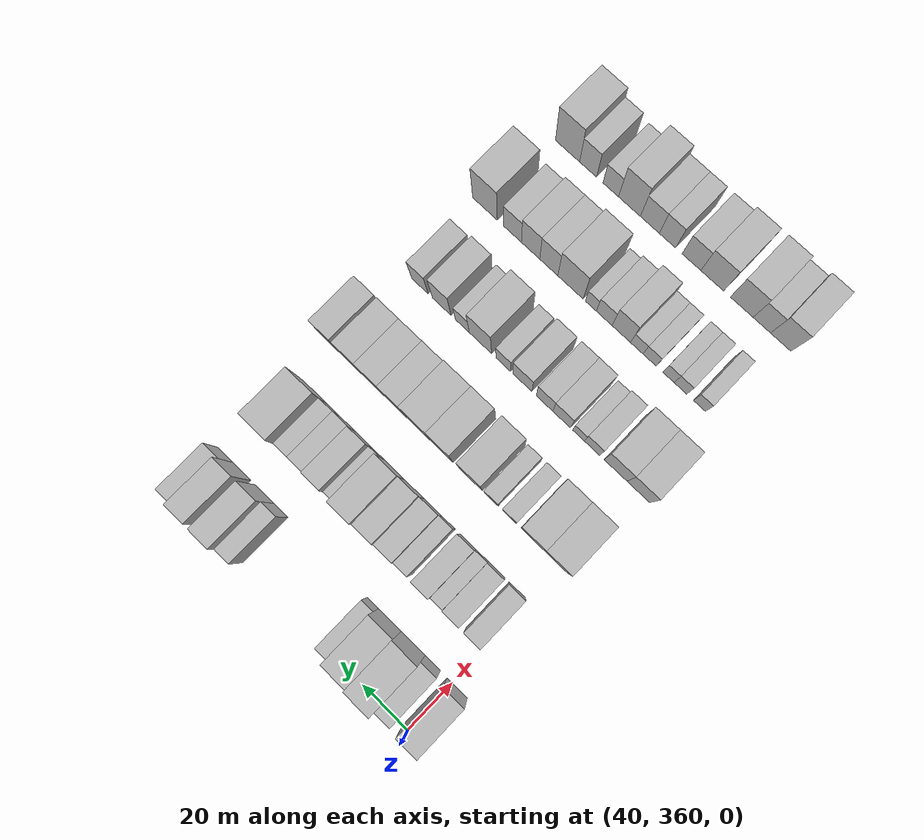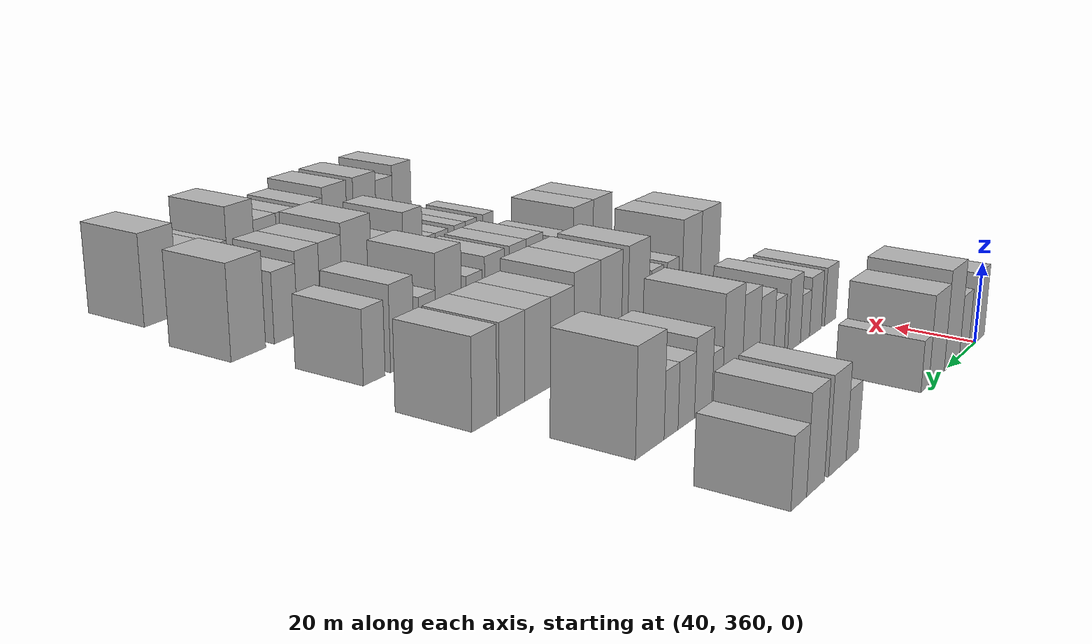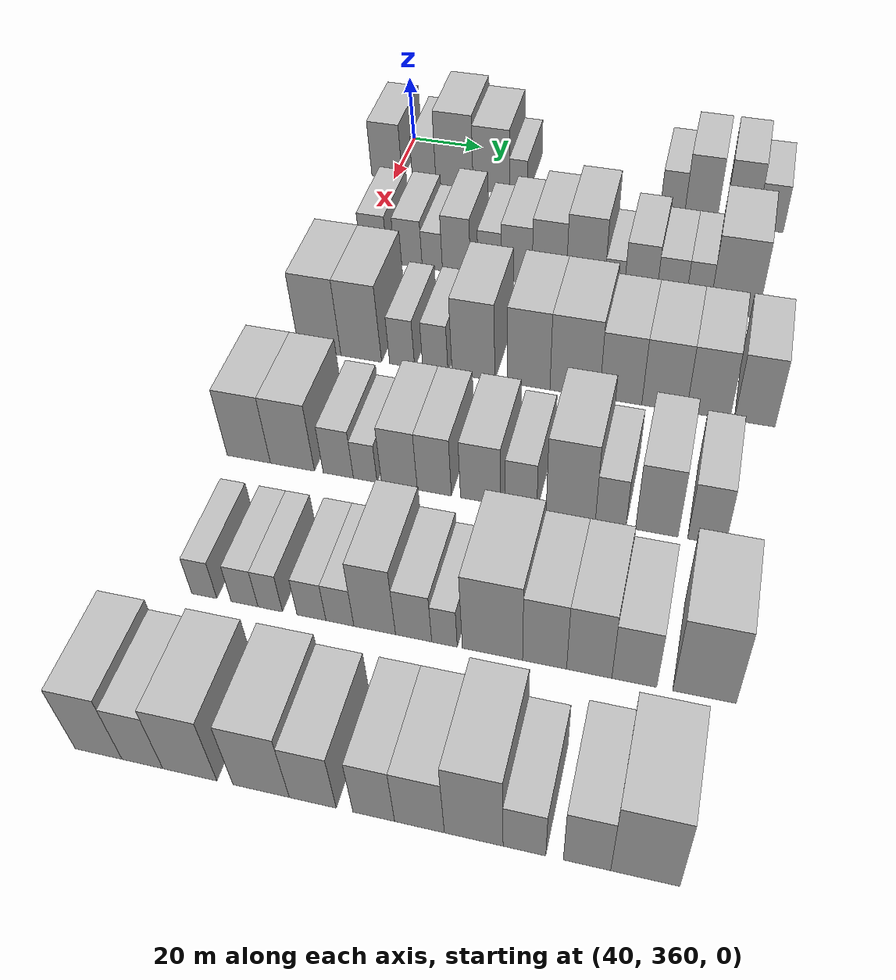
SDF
<sdf version="1.6">
 <world name="default">
  <model name="building_100">
   <static>1</static>
   <pose>50.0000 357.7792 0 0.000000 0.000000 0.000000</pose>
   <link name="link">
    <pose>0 0 9.00 0 0 0</pose>
    <collision name="collision"><geometry><box><size>20.0000 8.8949 18.0000</size></box></geometry></collision>
    <visual name="visual">
     <cast_shadows>0</cast_shadows>
     <geometry><box><size>20.0000 8.8949 18.0000</size></box></geometry>
     <material>
      <script>
       <uri>model://HANNAS_wall/materials/scripts</uri>
       <uri>model://HANNAS_wall/materials/textures</uri>
       <name>vrc/HANNAS_wall</name>
      </script>
     </material>
    </visual>
   </link>
  </model>
  <model name="building_101">
   <static>1</static>
   <pose>50.0000 368.6274 0 0.000000 0.000000 0.000000</pose>
   <link name="link">
    <pose>0 0 7.50 0 0 0</pose>
    <collision name="collision"><geometry><box><size>20.0000 6.8015 15.0000</size></box></geometry></collision>
    <visual name="visual">
     <cast_shadows>0</cast_shadows>
     <geometry><box><size>20.0000 6.8015 15.0000</size></box></geometry>
     <material>
      <script>
       <uri>model://HANNAS_wall/materials/scripts</uri>
       <uri>model://HANNAS_wall/materials/textures</uri>
       <name>vrc/HANNAS_wall</name>
      </script>
     </material>
    </visual>
   </link>
  </model>
  <model name="building_102">
   <static>1</static>
   <pose>50.0000 377.3687 0 0.000000 0.000000 0.000000</pose>
   <link name="link">
    <pose>0 0 12.00 0 0 0</pose>
    <collision name="collision"><geometry><box><size>20.0000 10.6811 24.0000</size></box></geometry></collision>
    <visual name="visual">
     <cast_shadows>0</cast_shadows>
     <geometry><box><size>20.0000 10.6811 24.0000</size></box></geometry>
     <material>
      <script>
       <uri>model://HANNAS_wall/materials/scripts</uri>
       <uri>model://HANNAS_wall/materials/textures</uri>
       <name>vrc/HANNAS_wall</name>
      </script>
     </material>
    </visual>
   </link>
  </model>
  <model name="building_103">
   <static>1</static>
   <pose>50.0000 387.8505 0 0.000000 0.000000 0.000000</pose>
   <link name="link">
    <pose>0 0 10.50 0 0 0</pose>
    <collision name="collision"><geometry><box><size>20.0000 10.2825 21.0000</size></box></geometry></collision>
    <visual name="visual">
     <cast_shadows>0</cast_shadows>
     <geometry><box><size>20.0000 10.2825 21.0000</size></box></geometry>
     <material>
      <script>
       <uri>model://HANNAS_wall/materials/scripts</uri>
       <uri>model://HANNAS_wall/materials/textures</uri>
       <name>vrc/HANNAS_wall</name>
      </script>
     </material>
    </visual>
   </link>
  </model>
  <model name="building_104">
   <static>1</static>
   <pose>50.0000 395.5606 0 0.000000 0.000000 0.000000</pose>
   <link name="link">
    <pose>0 0 6.00 0 0 0</pose>
    <collision name="collision"><geometry><box><size>20.0000 5.1377 12.0000</size></box></geometry></collision>
    <visual name="visual">
     <cast_shadows>0</cast_shadows>
     <geometry><box><size>20.0000 5.1377 12.0000</size></box></geometry>
     <material>
      <script>
       <uri>model://HANNAS_wall/materials/scripts</uri>
       <uri>model://HANNAS_wall/materials/textures</uri>
       <name>vrc/HANNAS_wall</name>
      </script>
     </material>
    </visual>
   </link>
  </model>
  <model name="building_105">
   <static>1</static>
   <pose>50.0000 438.0309 0 0.000000 0.000000 0.000000</pose>
   <link name="link">
    <pose>0 0 7.50 0 0 0</pose>
    <collision name="collision"><geometry><box><size>20.0000 6.6009 15.0000</size></box></geometry></collision>
    <visual name="visual">
     <cast_shadows>0</cast_shadows>
     <geometry><box><size>20.0000 6.6009 15.0000</size></box></geometry>
     <material>
      <script>
       <uri>model://HANNAS_wall/materials/scripts</uri>
       <uri>model://HANNAS_wall/materials/textures</uri>
       <name>vrc/HANNAS_wall</name>
      </script>
     </material>
    </visual>
   </link>
  </model>
  <model name="building_106">
   <static>1</static>
   <pose>50.0000 445.7200 0 0.000000 0.000000 0.000000</pose>
   <link name="link">
    <pose>0 0 10.50 0 0 0</pose>
    <collision name="collision"><geometry><box><size>20.0000 8.7773 21.0000</size></box></geometry></collision>
    <visual name="visual">
     <cast_shadows>0</cast_shadows>
     <geometry><box><size>20.0000 8.7773 21.0000</size></box></geometry>
     <material>
      <script>
       <uri>model://HANNAS_wall/materials/scripts</uri>
       <uri>model://HANNAS_wall/materials/textures</uri>
       <name>vrc/HANNAS_wall</name>
      </script>
     </material>
    </visual>
   </link>
  </model>
  <model name="building_107">
   <static>1</static>
   <pose>50.0000 456.3781 0 0.000000 0.000000 0.000000</pose>
   <link name="link">
    <pose>0 0 10.50 0 0 0</pose>
    <collision name="collision"><geometry><box><size>20.0000 8.5390 21.0000</size></box></geometry></collision>
    <visual name="visual">
     <cast_shadows>0</cast_shadows>
     <geometry><box><size>20.0000 8.5390 21.0000</size></box></geometry>
     <material>
      <script>
       <uri>model://HANNAS_wall/materials/scripts</uri>
       <uri>model://HANNAS_wall/materials/textures</uri>
       <name>vrc/HANNAS_wall</name>
      </script>
     </material>
    </visual>
   </link>
  </model>
  <model name="building_108">
   <static>1</static>
   <pose>50.0000 464.2136 0 0.000000 0.000000 0.000000</pose>
   <link name="link">
    <pose>0 0 7.50 0 0 0</pose>
    <collision name="collision"><geometry><box><size>20.0000 7.1320 15.0000</size></box></geometry></collision>
    <visual name="visual">
     <cast_shadows>0</cast_shadows>
     <geometry><box><size>20.0000 7.1320 15.0000</size></box></geometry>
     <material>
      <script>
       <uri>model://HANNAS_wall/materials/scripts</uri>
       <uri>model://HANNAS_wall/materials/textures</uri>
       <name>vrc/HANNAS_wall</name>
      </script>
     </material>
    </visual>
   </link>
  </model>
  <model name="building_229">
   <static>1</static>
   <pose>85.0000 365.0656 0 0.000000 0.000000 0.000000</pose>
   <link name="link">
    <pose>0 0 7.50 0 0 0</pose>
    <collision name="collision"><geometry><box><size>20.0000 7.1381 15.0000</size></box></geometry></collision>
    <visual name="visual">
     <cast_shadows>0</cast_shadows>
     <geometry><box><size>20.0000 7.1381 15.0000</size></box></geometry>
     <material>
      <script>
       <uri>model://HANNAS_wall/materials/scripts</uri>
       <uri>model://HANNAS_wall/materials/textures</uri>
       <name>vrc/HANNAS_wall</name>
      </script>
     </material>
    </visual>
   </link>
  </model>
  <model name="building_230">
   <static>1</static>
   <pose>85.0000 374.2749 0 0.000000 0.000000 0.000000</pose>
   <link name="link">
    <pose>0 0 7.50 0 0 0</pose>
    <collision name="collision"><geometry><box><size>20.0000 7.2805 15.0000</size></box></geometry></collision>
    <visual name="visual">
     <cast_shadows>0</cast_shadows>
     <geometry><box><size>20.0000 7.2805 15.0000</size></box></geometry>
     <material>
      <script>
       <uri>model://HANNAS_wall/materials/scripts</uri>
       <uri>model://HANNAS_wall/materials/textures</uri>
       <name>vrc/HANNAS_wall</name>
      </script>
     </material>
    </visual>
   </link>
  </model>
  <model name="building_231">
   <static>1</static>
   <pose>85.0000 380.6085 0 0.000000 0.000000 0.000000</pose>
   <link name="link">
    <pose>0 0 6.00 0 0 0</pose>
    <collision name="collision"><geometry><box><size>20.0000 5.3868 12.0000</size></box></geometry></collision>
    <visual name="visual">
     <cast_shadows>0</cast_shadows>
     <geometry><box><size>20.0000 5.3868 12.0000</size></box></geometry>
     <material>
      <script>
       <uri>model://HANNAS_wall/materials/scripts</uri>
       <uri>model://HANNAS_wall/materials/textures</uri>
       <name>vrc/HANNAS_wall</name>
      </script>
     </material>
    </visual>
   </link>
  </model>
  <model name="building_232">
   <static>1</static>
   <pose>85.0000 387.0206 0 0.000000 0.000000 0.000000</pose>
   <link name="link">
    <pose>0 0 9.00 0 0 0</pose>
    <collision name="collision"><geometry><box><size>20.0000 7.4374 18.0000</size></box></geometry></collision>
    <visual name="visual">
     <cast_shadows>0</cast_shadows>
     <geometry><box><size>20.0000 7.4374 18.0000</size></box></geometry>
     <material>
      <script>
       <uri>model://HANNAS_wall/materials/scripts</uri>
       <uri>model://HANNAS_wall/materials/textures</uri>
       <name>vrc/HANNAS_wall</name>
      </script>
     </material>
    </visual>
   </link>
  </model>
  <model name="building_233">
   <static>1</static>
   <pose>85.0000 395.7662 0 0.000000 0.000000 0.000000</pose>
   <link name="link">
    <pose>0 0 7.50 0 0 0</pose>
    <collision name="collision"><geometry><box><size>20.0000 6.0538 15.0000</size></box></geometry></collision>
    <visual name="visual">
     <cast_shadows>0</cast_shadows>
     <geometry><box><size>20.0000 6.0538 15.0000</size></box></geometry>
     <material>
      <script>
       <uri>model://HANNAS_wall/materials/scripts</uri>
       <uri>model://HANNAS_wall/materials/textures</uri>
       <name>vrc/HANNAS_wall</name>
      </script>
     </material>
    </visual>
   </link>
  </model>
  <model name="building_234">
   <static>1</static>
   <pose>85.0000 402.8019 0 0.000000 0.000000 0.000000</pose>
   <link name="link">
    <pose>0 0 9.00 0 0 0</pose>
    <collision name="collision"><geometry><box><size>20.0000 8.0177 18.0000</size></box></geometry></collision>
    <visual name="visual">
     <cast_shadows>0</cast_shadows>
     <geometry><box><size>20.0000 8.0177 18.0000</size></box></geometry>
     <material>
      <script>
       <uri>model://HANNAS_wall/materials/scripts</uri>
       <uri>model://HANNAS_wall/materials/textures</uri>
       <name>vrc/HANNAS_wall</name>
      </script>
     </material>
    </visual>
   </link>
  </model>
  <model name="building_235">
   <static>1</static>
   <pose>85.0000 411.1784 0 0.000000 0.000000 0.000000</pose>
   <link name="link">
    <pose>0 0 10.50 0 0 0</pose>
    <collision name="collision"><geometry><box><size>20.0000 8.7353 21.0000</size></box></geometry></collision>
    <visual name="visual">
     <cast_shadows>0</cast_shadows>
     <geometry><box><size>20.0000 8.7353 21.0000</size></box></geometry>
     <material>
      <script>
       <uri>model://HANNAS_wall/materials/scripts</uri>
       <uri>model://HANNAS_wall/materials/textures</uri>
       <name>vrc/HANNAS_wall</name>
      </script>
     </material>
    </visual>
   </link>
  </model>
  <model name="building_236">
   <static>1</static>
   <pose>85.0000 420.4131 0 0.000000 0.000000 0.000000</pose>
   <link name="link">
    <pose>0 0 12.00 0 0 0</pose>
    <collision name="collision"><geometry><box><size>20.0000 9.7342 24.0000</size></box></geometry></collision>
    <visual name="visual">
     <cast_shadows>0</cast_shadows>
     <geometry><box><size>20.0000 9.7342 24.0000</size></box></geometry>
     <material>
      <script>
       <uri>model://HANNAS_wall/materials/scripts</uri>
       <uri>model://HANNAS_wall/materials/textures</uri>
       <name>vrc/HANNAS_wall</name>
      </script>
     </material>
    </visual>
   </link>
  </model>
  <model name="building_237">
   <static>1</static>
   <pose>85.0000 427.7643 0 0.000000 0.000000 0.000000</pose>
   <link name="link">
    <pose>0 0 6.00 0 0 0</pose>
    <collision name="collision"><geometry><box><size>20.0000 4.9681 12.0000</size></box></geometry></collision>
    <visual name="visual">
     <cast_shadows>0</cast_shadows>
     <geometry><box><size>20.0000 4.9681 12.0000</size></box></geometry>
     <material>
      <script>
       <uri>model://HANNAS_wall/materials/scripts</uri>
       <uri>model://HANNAS_wall/materials/textures</uri>
       <name>vrc/HANNAS_wall</name>
      </script>
     </material>
    </visual>
   </link>
  </model>
  <model name="building_238">
   <static>1</static>
   <pose>85.0000 434.3103 0 0.000000 0.000000 0.000000</pose>
   <link name="link">
    <pose>0 0 9.00 0 0 0</pose>
    <collision name="collision"><geometry><box><size>20.0000 8.1241 18.0000</size></box></geometry></collision>
    <visual name="visual">
     <cast_shadows>0</cast_shadows>
     <geometry><box><size>20.0000 8.1241 18.0000</size></box></geometry>
     <material>
      <script>
       <uri>model://HANNAS_wall/materials/scripts</uri>
       <uri>model://HANNAS_wall/materials/textures</uri>
       <name>vrc/HANNAS_wall</name>
      </script>
     </material>
    </visual>
   </link>
  </model>
  <model name="building_239">
   <static>1</static>
   <pose>85.0000 442.0460 0 0.000000 0.000000 0.000000</pose>
   <link name="link">
    <pose>0 0 7.50 0 0 0</pose>
    <collision name="collision"><geometry><box><size>20.0000 7.3473 15.0000</size></box></geometry></collision>
    <visual name="visual">
     <cast_shadows>0</cast_shadows>
     <geometry><box><size>20.0000 7.3473 15.0000</size></box></geometry>
     <material>
      <script>
       <uri>model://HANNAS_wall/materials/scripts</uri>
       <uri>model://HANNAS_wall/materials/textures</uri>
       <name>vrc/HANNAS_wall</name>
      </script>
     </material>
    </visual>
   </link>
  </model>
  <model name="building_240">
   <static>1</static>
   <pose>85.0000 448.7471 0 0.000000 0.000000 0.000000</pose>
   <link name="link">
    <pose>0 0 7.50 0 0 0</pose>
    <collision name="collision"><geometry><box><size>20.0000 6.0549 15.0000</size></box></geometry></collision>
    <visual name="visual">
     <cast_shadows>0</cast_shadows>
     <geometry><box><size>20.0000 6.0549 15.0000</size></box></geometry>
     <material>
      <script>
       <uri>model://HANNAS_wall/materials/scripts</uri>
       <uri>model://HANNAS_wall/materials/textures</uri>
       <name>vrc/HANNAS_wall</name>
      </script>
     </material>
    </visual>
   </link>
  </model>
  <model name="building_241">
   <static>1</static>
   <pose>85.0000 457.7166 0 0.000000 0.000000 0.000000</pose>
   <link name="link">
    <pose>0 0 12.00 0 0 0</pose>
    <collision name="collision"><geometry><box><size>20.0000 11.8840 24.0000</size></box></geometry></collision>
    <visual name="visual">
     <cast_shadows>0</cast_shadows>
     <geometry><box><size>20.0000 11.8840 24.0000</size></box></geometry>
     <material>
      <script>
       <uri>model://HANNAS_wall/materials/scripts</uri>
       <uri>model://HANNAS_wall/materials/textures</uri>
       <name>vrc/HANNAS_wall</name>
      </script>
     </material>
    </visual>
   </link>
  </model>
  <model name="building_358">
   <static>1</static>
   <pose>120.0000 362.3428 0 0.000000 0.000000 0.000000</pose>
   <link name="link">
    <pose>0 0 12.00 0 0 0</pose>
    <collision name="collision"><geometry><box><size>20.0000 10.6263 24.0000</size></box></geometry></collision>
    <visual name="visual">
     <cast_shadows>0</cast_shadows>
     <geometry><box><size>20.0000 10.6263 24.0000</size></box></geometry>
     <material>
      <script>
       <uri>model://HANNAS_wall/materials/scripts</uri>
       <uri>model://HANNAS_wall/materials/textures</uri>
       <name>vrc/HANNAS_wall</name>
      </script>
     </material>
    </visual>
   </link>
  </model>
  <model name="building_359">
   <static>1</static>
   <pose>120.0000 372.7094 0 0.000000 0.000000 0.000000</pose>
   <link name="link">
    <pose>0 0 12.00 0 0 0</pose>
    <collision name="collision"><geometry><box><size>20.0000 10.1069 24.0000</size></box></geometry></collision>
    <visual name="visual">
     <cast_shadows>0</cast_shadows>
     <geometry><box><size>20.0000 10.1069 24.0000</size></box></geometry>
     <material>
      <script>
       <uri>model://HANNAS_wall/materials/scripts</uri>
       <uri>model://HANNAS_wall/materials/textures</uri>
       <name>vrc/HANNAS_wall</name>
      </script>
     </material>
    </visual>
   </link>
  </model>
  <model name="building_360">
   <static>1</static>
   <pose>120.0000 382.8427 0 0.000000 0.000000 0.000000</pose>
   <link name="link">
    <pose>0 0 7.50 0 0 0</pose>
    <collision name="collision"><geometry><box><size>20.0000 6.1597 15.0000</size></box></geometry></collision>
    <visual name="visual">
     <cast_shadows>0</cast_shadows>
     <geometry><box><size>20.0000 6.1597 15.0000</size></box></geometry>
     <material>
      <script>
       <uri>model://HANNAS_wall/materials/scripts</uri>
       <uri>model://HANNAS_wall/materials/textures</uri>
       <name>vrc/HANNAS_wall</name>
      </script>
     </material>
    </visual>
   </link>
  </model>
  <model name="building_361">
   <static>1</static>
   <pose>120.0000 390.9871 0 0.000000 0.000000 0.000000</pose>
   <link name="link">
    <pose>0 0 7.50 0 0 0</pose>
    <collision name="collision"><geometry><box><size>20.0000 6.1290 15.0000</size></box></geometry></collision>
    <visual name="visual">
     <cast_shadows>0</cast_shadows>
     <geometry><box><size>20.0000 6.1290 15.0000</size></box></geometry>
     <material>
      <script>
       <uri>model://HANNAS_wall/materials/scripts</uri>
       <uri>model://HANNAS_wall/materials/textures</uri>
       <name>vrc/HANNAS_wall</name>
      </script>
     </material>
    </visual>
   </link>
  </model>
  <model name="building_362">
   <static>1</static>
   <pose>120.0000 400.2053 0 0.000000 0.000000 0.000000</pose>
   <link name="link">
    <pose>0 0 12.00 0 0 0</pose>
    <collision name="collision"><geometry><box><size>20.0000 10.3074 24.0000</size></box></geometry></collision>
    <visual name="visual">
     <cast_shadows>0</cast_shadows>
     <geometry><box><size>20.0000 10.3074 24.0000</size></box></geometry>
     <material>
      <script>
       <uri>model://HANNAS_wall/materials/scripts</uri>
       <uri>model://HANNAS_wall/materials/textures</uri>
       <name>vrc/HANNAS_wall</name>
      </script>
     </material>
    </visual>
   </link>
  </model>
  <model name="building_363">
   <static>1</static>
   <pose>120.0000 413.4178 0 0.000000 0.000000 0.000000</pose>
   <link name="link">
    <pose>0 0 12.00 0 0 0</pose>
    <collision name="collision"><geometry><box><size>20.0000 10.1176 24.0000</size></box></geometry></collision>
    <visual name="visual">
     <cast_shadows>0</cast_shadows>
     <geometry><box><size>20.0000 10.1176 24.0000</size></box></geometry>
     <material>
      <script>
       <uri>model://HANNAS_wall/materials/scripts</uri>
       <uri>model://HANNAS_wall/materials/textures</uri>
       <name>vrc/HANNAS_wall</name>
      </script>
     </material>
    </visual>
   </link>
  </model>
  <model name="building_364">
   <static>1</static>
   <pose>120.0000 424.2976 0 0.000000 0.000000 0.000000</pose>
   <link name="link">
    <pose>0 0 12.00 0 0 0</pose>
    <collision name="collision"><geometry><box><size>20.0000 11.6418 24.0000</size></box></geometry></collision>
    <visual name="visual">
     <cast_shadows>0</cast_shadows>
     <geometry><box><size>20.0000 11.6418 24.0000</size></box></geometry>
     <material>
      <script>
       <uri>model://HANNAS_wall/materials/scripts</uri>
       <uri>model://HANNAS_wall/materials/textures</uri>
       <name>vrc/HANNAS_wall</name>
      </script>
     </material>
    </visual>
   </link>
  </model>
  <model name="building_365">
   <static>1</static>
   <pose>120.0000 435.0111 0 0.000000 0.000000 0.000000</pose>
   <link name="link">
    <pose>0 0 10.50 0 0 0</pose>
    <collision name="collision"><geometry><box><size>20.0000 9.7853 21.0000</size></box></geometry></collision>
    <visual name="visual">
     <cast_shadows>0</cast_shadows>
     <geometry><box><size>20.0000 9.7853 21.0000</size></box></geometry>
     <material>
      <script>
       <uri>model://HANNAS_wall/materials/scripts</uri>
       <uri>model://HANNAS_wall/materials/textures</uri>
       <name>vrc/HANNAS_wall</name>
      </script>
     </material>
    </visual>
   </link>
  </model>
  <model name="building_366">
   <static>1</static>
   <pose>120.0000 445.0326 0 0.000000 0.000000 0.000000</pose>
   <link name="link">
    <pose>0 0 10.50 0 0 0</pose>
    <collision name="collision"><geometry><box><size>20.0000 10.2578 21.0000</size></box></geometry></collision>
    <visual name="visual">
     <cast_shadows>0</cast_shadows>
     <geometry><box><size>20.0000 10.2578 21.0000</size></box></geometry>
     <material>
      <script>
       <uri>model://HANNAS_wall/materials/scripts</uri>
       <uri>model://HANNAS_wall/materials/textures</uri>
       <name>vrc/HANNAS_wall</name>
      </script>
     </material>
    </visual>
   </link>
  </model>
  <model name="building_367">
   <static>1</static>
   <pose>120.0000 455.0796 0 0.000000 0.000000 0.000000</pose>
   <link name="link">
    <pose>0 0 10.50 0 0 0</pose>
    <collision name="collision"><geometry><box><size>20.0000 9.8362 21.0000</size></box></geometry></collision>
    <visual name="visual">
     <cast_shadows>0</cast_shadows>
     <geometry><box><size>20.0000 9.8362 21.0000</size></box></geometry>
     <material>
      <script>
       <uri>model://HANNAS_wall/materials/scripts</uri>
       <uri>model://HANNAS_wall/materials/textures</uri>
       <name>vrc/HANNAS_wall</name>
      </script>
     </material>
    </visual>
   </link>
  </model>
  <model name="building_368">
   <static>1</static>
   <pose>120.0000 465.5518 0 0.000000 0.000000 0.000000</pose>
   <link name="link">
    <pose>0 0 10.50 0 0 0</pose>
    <collision name="collision"><geometry><box><size>20.0000 9.1082 21.0000</size></box></geometry></collision>
    <visual name="visual">
     <cast_shadows>0</cast_shadows>
     <geometry><box><size>20.0000 9.1082 21.0000</size></box></geometry>
     <material>
      <script>
       <uri>model://HANNAS_wall/materials/scripts</uri>
       <uri>model://HANNAS_wall/materials/textures</uri>
       <name>vrc/HANNAS_wall</name>
      </script>
     </material>
    </visual>
   </link>
  </model>
  <model name="building_491">
   <static>1</static>
   <pose>155.0000 358.1417 0 0.000000 0.000000 0.000000</pose>
   <link name="link">
    <pose>0 0 10.50 0 0 0</pose>
    <collision name="collision"><geometry><box><size>20.0000 10.0548 21.0000</size></box></geometry></collision>
    <visual name="visual">
     <cast_shadows>0</cast_shadows>
     <geometry><box><size>20.0000 10.0548 21.0000</size></box></geometry>
     <material>
      <script>
       <uri>model://HANNAS_wall/materials/scripts</uri>
       <uri>model://HANNAS_wall/materials/textures</uri>
       <name>vrc/HANNAS_wall</name>
      </script>
     </material>
    </visual>
   </link>
  </model>
  <model name="building_492">
   <static>1</static>
   <pose>155.0000 368.2498 0 0.000000 0.000000 0.000000</pose>
   <link name="link">
    <pose>0 0 10.50 0 0 0</pose>
    <collision name="collision"><geometry><box><size>20.0000 10.1615 21.0000</size></box></geometry></collision>
    <visual name="visual">
     <cast_shadows>0</cast_shadows>
     <geometry><box><size>20.0000 10.1615 21.0000</size></box></geometry>
     <material>
      <script>
       <uri>model://HANNAS_wall/materials/scripts</uri>
       <uri>model://HANNAS_wall/materials/textures</uri>
       <name>vrc/HANNAS_wall</name>
      </script>
     </material>
    </visual>
   </link>
  </model>
  <model name="building_493">
   <static>1</static>
   <pose>155.0000 378.7563 0 0.000000 0.000000 0.000000</pose>
   <link name="link">
    <pose>0 0 7.50 0 0 0</pose>
    <collision name="collision"><geometry><box><size>20.0000 6.8514 15.0000</size></box></geometry></collision>
    <visual name="visual">
     <cast_shadows>0</cast_shadows>
     <geometry><box><size>20.0000 6.8514 15.0000</size></box></geometry>
     <material>
      <script>
       <uri>model://HANNAS_wall/materials/scripts</uri>
       <uri>model://HANNAS_wall/materials/textures</uri>
       <name>vrc/HANNAS_wall</name>
      </script>
     </material>
    </visual>
   </link>
  </model>
  <model name="building_494">
   <static>1</static>
   <pose>155.0000 384.8646 0 0.000000 0.000000 0.000000</pose>
   <link name="link">
    <pose>0 0 6.00 0 0 0</pose>
    <collision name="collision"><geometry><box><size>20.0000 5.3651 12.0000</size></box></geometry></collision>
    <visual name="visual">
     <cast_shadows>0</cast_shadows>
     <geometry><box><size>20.0000 5.3651 12.0000</size></box></geometry>
     <material>
      <script>
       <uri>model://HANNAS_wall/materials/scripts</uri>
       <uri>model://HANNAS_wall/materials/textures</uri>
       <name>vrc/HANNAS_wall</name>
      </script>
     </material>
    </visual>
   </link>
  </model>
  <model name="building_495">
   <static>1</static>
   <pose>155.0000 392.5406 0 0.000000 0.000000 0.000000</pose>
   <link name="link">
    <pose>0 0 9.00 0 0 0</pose>
    <collision name="collision"><geometry><box><size>20.0000 7.9870 18.0000</size></box></geometry></collision>
    <visual name="visual">
     <cast_shadows>0</cast_shadows>
     <geometry><box><size>20.0000 7.9870 18.0000</size></box></geometry>
     <material>
      <script>
       <uri>model://HANNAS_wall/materials/scripts</uri>
       <uri>model://HANNAS_wall/materials/textures</uri>
       <name>vrc/HANNAS_wall</name>
      </script>
     </material>
    </visual>
   </link>
  </model>
  <model name="building_496">
   <static>1</static>
   <pose>155.0000 400.3089 0 0.000000 0.000000 0.000000</pose>
   <link name="link">
    <pose>0 0 9.00 0 0 0</pose>
    <collision name="collision"><geometry><box><size>20.0000 7.5497 18.0000</size></box></geometry></collision>
    <visual name="visual">
     <cast_shadows>0</cast_shadows>
     <geometry><box><size>20.0000 7.5497 18.0000</size></box></geometry>
     <material>
      <script>
       <uri>model://HANNAS_wall/materials/scripts</uri>
       <uri>model://HANNAS_wall/materials/textures</uri>
       <name>vrc/HANNAS_wall</name>
      </script>
     </material>
    </visual>
   </link>
  </model>
  <model name="building_497">
   <static>1</static>
   <pose>155.0000 410.4728 0 0.000000 0.000000 0.000000</pose>
   <link name="link">
    <pose>0 0 9.00 0 0 0</pose>
    <collision name="collision"><geometry><box><size>20.0000 8.7781 18.0000</size></box></geometry></collision>
    <visual name="visual">
     <cast_shadows>0</cast_shadows>
     <geometry><box><size>20.0000 8.7781 18.0000</size></box></geometry>
     <material>
      <script>
       <uri>model://HANNAS_wall/materials/scripts</uri>
       <uri>model://HANNAS_wall/materials/textures</uri>
       <name>vrc/HANNAS_wall</name>
      </script>
     </material>
    </visual>
   </link>
  </model>
  <model name="building_498">
   <static>1</static>
   <pose>155.0000 419.2668 0 0.000000 0.000000 0.000000</pose>
   <link name="link">
    <pose>0 0 7.50 0 0 0</pose>
    <collision name="collision"><geometry><box><size>20.0000 6.8099 15.0000</size></box></geometry></collision>
    <visual name="visual">
     <cast_shadows>0</cast_shadows>
     <geometry><box><size>20.0000 6.8099 15.0000</size></box></geometry>
     <material>
      <script>
       <uri>model://HANNAS_wall/materials/scripts</uri>
       <uri>model://HANNAS_wall/materials/textures</uri>
       <name>vrc/HANNAS_wall</name>
      </script>
     </material>
    </visual>
   </link>
  </model>
  <model name="building_499">
   <static>1</static>
   <pose>155.0000 429.9181 0 0.000000 0.000000 0.000000</pose>
   <link name="link">
    <pose>0 0 12.00 0 0 0</pose>
    <collision name="collision"><geometry><box><size>20.0000 10.4926 24.0000</size></box></geometry></collision>
    <visual name="visual">
     <cast_shadows>0</cast_shadows>
     <geometry><box><size>20.0000 10.4926 24.0000</size></box></geometry>
     <material>
      <script>
       <uri>model://HANNAS_wall/materials/scripts</uri>
       <uri>model://HANNAS_wall/materials/textures</uri>
       <name>vrc/HANNAS_wall</name>
      </script>
     </material>
    </visual>
   </link>
  </model>
  <model name="building_500">
   <static>1</static>
   <pose>155.0000 438.3946 0 0.000000 0.000000 0.000000</pose>
   <link name="link">
    <pose>0 0 7.50 0 0 0</pose>
    <collision name="collision"><geometry><box><size>20.0000 6.4604 15.0000</size></box></geometry></collision>
    <visual name="visual">
     <cast_shadows>0</cast_shadows>
     <geometry><box><size>20.0000 6.4604 15.0000</size></box></geometry>
     <material>
      <script>
       <uri>model://HANNAS_wall/materials/scripts</uri>
       <uri>model://HANNAS_wall/materials/textures</uri>
       <name>vrc/HANNAS_wall</name>
      </script>
     </material>
    </visual>
   </link>
  </model>
  <model name="building_501">
   <static>1</static>
   <pose>155.0000 448.0644 0 0.000000 0.000000 0.000000</pose>
   <link name="link">
    <pose>0 0 10.50 0 0 0</pose>
    <collision name="collision"><geometry><box><size>20.0000 8.8793 21.0000</size></box></geometry></collision>
    <visual name="visual">
     <cast_shadows>0</cast_shadows>
     <geometry><box><size>20.0000 8.8793 21.0000</size></box></geometry>
     <material>
      <script>
       <uri>model://HANNAS_wall/materials/scripts</uri>
       <uri>model://HANNAS_wall/materials/textures</uri>
       <name>vrc/HANNAS_wall</name>
      </script>
     </material>
    </visual>
   </link>
  </model>
  <model name="building_502">
   <static>1</static>
   <pose>155.0000 458.3922 0 0.000000 0.000000 0.000000</pose>
   <link name="link">
    <pose>0 0 9.00 0 0 0</pose>
    <collision name="collision"><geometry><box><size>20.0000 7.7763 18.0000</size></box></geometry></collision>
    <visual name="visual">
     <cast_shadows>0</cast_shadows>
     <geometry><box><size>20.0000 7.7763 18.0000</size></box></geometry>
     <material>
      <script>
       <uri>model://HANNAS_wall/materials/scripts</uri>
       <uri>model://HANNAS_wall/materials/textures</uri>
       <name>vrc/HANNAS_wall</name>
      </script>
     </material>
    </visual>
   </link>
  </model>
  <model name="building_614">
   <static>1</static>
   <pose>190.0000 362.6805 0 0.000000 0.000000 0.000000</pose>
   <link name="link">
    <pose>0 0 6.00 0 0 0</pose>
    <collision name="collision"><geometry><box><size>20.0000 5.3127 12.0000</size></box></geometry></collision>
    <visual name="visual">
     <cast_shadows>0</cast_shadows>
     <geometry><box><size>20.0000 5.3127 12.0000</size></box></geometry>
     <material>
      <script>
       <uri>model://HANNAS_wall/materials/scripts</uri>
       <uri>model://HANNAS_wall/materials/textures</uri>
       <name>vrc/HANNAS_wall</name>
      </script>
     </material>
    </visual>
   </link>
  </model>
  <model name="building_615">
   <static>1</static>
   <pose>190.0000 371.1517 0 0.000000 0.000000 0.000000</pose>
   <link name="link">
    <pose>0 0 6.00 0 0 0</pose>
    <collision name="collision"><geometry><box><size>20.0000 5.6296 12.0000</size></box></geometry></collision>
    <visual name="visual">
     <cast_shadows>0</cast_shadows>
     <geometry><box><size>20.0000 5.6296 12.0000</size></box></geometry>
     <material>
      <script>
       <uri>model://HANNAS_wall/materials/scripts</uri>
       <uri>model://HANNAS_wall/materials/textures</uri>
       <name>vrc/HANNAS_wall</name>
      </script>
     </material>
    </visual>
   </link>
  </model>
  <model name="building_616">
   <static>1</static>
   <pose>190.0000 376.5172 0 0.000000 0.000000 0.000000</pose>
   <link name="link">
    <pose>0 0 6.00 0 0 0</pose>
    <collision name="collision"><geometry><box><size>20.0000 5.1014 12.0000</size></box></geometry></collision>
    <visual name="visual">
     <cast_shadows>0</cast_shadows>
     <geometry><box><size>20.0000 5.1014 12.0000</size></box></geometry>
     <material>
      <script>
       <uri>model://HANNAS_wall/materials/scripts</uri>
       <uri>model://HANNAS_wall/materials/textures</uri>
       <name>vrc/HANNAS_wall</name>
      </script>
     </material>
    </visual>
   </link>
  </model>
  <model name="building_617">
   <static>1</static>
   <pose>190.0000 385.0489 0 0.000000 0.000000 0.000000</pose>
   <link name="link">
    <pose>0 0 6.00 0 0 0</pose>
    <collision name="collision"><geometry><box><size>20.0000 5.9619 12.0000</size></box></geometry></collision>
    <visual name="visual">
     <cast_shadows>0</cast_shadows>
     <geometry><box><size>20.0000 5.9619 12.0000</size></box></geometry>
     <material>
      <script>
       <uri>model://HANNAS_wall/materials/scripts</uri>
       <uri>model://HANNAS_wall/materials/textures</uri>
       <name>vrc/HANNAS_wall</name>
      </script>
     </material>
    </visual>
   </link>
  </model>
  <model name="building_618">
   <static>1</static>
   <pose>190.0000 390.8803 0 0.000000 0.000000 0.000000</pose>
   <link name="link">
    <pose>0 0 6.00 0 0 0</pose>
    <collision name="collision"><geometry><box><size>20.0000 5.7010 12.0000</size></box></geometry></collision>
    <visual name="visual">
     <cast_shadows>0</cast_shadows>
     <geometry><box><size>20.0000 5.7010 12.0000</size></box></geometry>
     <material>
      <script>
       <uri>model://HANNAS_wall/materials/scripts</uri>
       <uri>model://HANNAS_wall/materials/textures</uri>
       <name>vrc/HANNAS_wall</name>
      </script>
     </material>
    </visual>
   </link>
  </model>
  <model name="building_619">
   <static>1</static>
   <pose>190.0000 397.9374 0 0.000000 0.000000 0.000000</pose>
   <link name="link">
    <pose>0 0 10.50 0 0 0</pose>
    <collision name="collision"><geometry><box><size>20.0000 8.4131 21.0000</size></box></geometry></collision>
    <visual name="visual">
     <cast_shadows>0</cast_shadows>
     <geometry><box><size>20.0000 8.4131 21.0000</size></box></geometry>
     <material>
      <script>
       <uri>model://HANNAS_wall/materials/scripts</uri>
       <uri>model://HANNAS_wall/materials/textures</uri>
       <name>vrc/HANNAS_wall</name>
      </script>
     </material>
    </visual>
   </link>
  </model>
  <model name="building_620">
   <static>1</static>
   <pose>190.0000 405.7613 0 0.000000 0.000000 0.000000</pose>
   <link name="link">
    <pose>0 0 7.50 0 0 0</pose>
    <collision name="collision"><geometry><box><size>20.0000 7.2347 15.0000</size></box></geometry></collision>
    <visual name="visual">
     <cast_shadows>0</cast_shadows>
     <geometry><box><size>20.0000 7.2347 15.0000</size></box></geometry>
     <material>
      <script>
       <uri>model://HANNAS_wall/materials/scripts</uri>
       <uri>model://HANNAS_wall/materials/textures</uri>
       <name>vrc/HANNAS_wall</name>
      </script>
     </material>
    </visual>
   </link>
  </model>
  <model name="building_621">
   <static>1</static>
   <pose>190.0000 411.9132 0 0.000000 0.000000 0.000000</pose>
   <link name="link">
    <pose>0 0 6.00 0 0 0</pose>
    <collision name="collision"><geometry><box><size>20.0000 5.0691 12.0000</size></box></geometry></collision>
    <visual name="visual">
     <cast_shadows>0</cast_shadows>
     <geometry><box><size>20.0000 5.0691 12.0000</size></box></geometry>
     <material>
      <script>
       <uri>model://HANNAS_wall/materials/scripts</uri>
       <uri>model://HANNAS_wall/materials/textures</uri>
       <name>vrc/HANNAS_wall</name>
      </script>
     </material>
    </visual>
   </link>
  </model>
  <model name="building_622">
   <static>1</static>
   <pose>190.0000 421.3343 0 0.000000 0.000000 0.000000</pose>
   <link name="link">
    <pose>0 0 12.00 0 0 0</pose>
    <collision name="collision"><geometry><box><size>20.0000 11.7730 24.0000</size></box></geometry></collision>
    <visual name="visual">
     <cast_shadows>0</cast_shadows>
     <geometry><box><size>20.0000 11.7730 24.0000</size></box></geometry>
     <material>
      <script>
       <uri>model://HANNAS_wall/materials/scripts</uri>
       <uri>model://HANNAS_wall/materials/textures</uri>
       <name>vrc/HANNAS_wall</name>
      </script>
     </material>
    </visual>
   </link>
  </model>
  <model name="building_623">
   <static>1</static>
   <pose>190.0000 431.4701 0 0.000000 0.000000 0.000000</pose>
   <link name="link">
    <pose>0 0 10.50 0 0 0</pose>
    <collision name="collision"><geometry><box><size>20.0000 8.4986 21.0000</size></box></geometry></collision>
    <visual name="visual">
     <cast_shadows>0</cast_shadows>
     <geometry><box><size>20.0000 8.4986 21.0000</size></box></geometry>
     <material>
      <script>
       <uri>model://HANNAS_wall/materials/scripts</uri>
       <uri>model://HANNAS_wall/materials/textures</uri>
       <name>vrc/HANNAS_wall</name>
      </script>
     </material>
    </visual>
   </link>
  </model>
  <model name="building_624">
   <static>1</static>
   <pose>190.0000 440.0267 0 0.000000 0.000000 0.000000</pose>
   <link name="link">
    <pose>0 0 10.50 0 0 0</pose>
    <collision name="collision"><geometry><box><size>20.0000 8.6146 21.0000</size></box></geometry></collision>
    <visual name="visual">
     <cast_shadows>0</cast_shadows>
     <geometry><box><size>20.0000 8.6146 21.0000</size></box></geometry>
     <material>
      <script>
       <uri>model://HANNAS_wall/materials/scripts</uri>
       <uri>model://HANNAS_wall/materials/textures</uri>
       <name>vrc/HANNAS_wall</name>
      </script>
     </material>
    </visual>
   </link>
  </model>
  <model name="building_625">
   <static>1</static>
   <pose>190.0000 448.5618 0 0.000000 0.000000 0.000000</pose>
   <link name="link">
    <pose>0 0 9.00 0 0 0</pose>
    <collision name="collision"><geometry><box><size>20.0000 8.4556 18.0000</size></box></geometry></collision>
    <visual name="visual">
     <cast_shadows>0</cast_shadows>
     <geometry><box><size>20.0000 8.4556 18.0000</size></box></geometry>
     <material>
      <script>
       <uri>model://HANNAS_wall/materials/scripts</uri>
       <uri>model://HANNAS_wall/materials/textures</uri>
       <name>vrc/HANNAS_wall</name>
      </script>
     </material>
    </visual>
   </link>
  </model>
  <model name="building_626">
   <static>1</static>
   <pose>190.0000 461.6597 0 0.000000 0.000000 0.000000</pose>
   <link name="link">
    <pose>0 0 12.00 0 0 0</pose>
    <collision name="collision"><geometry><box><size>20.0000 11.7401 24.0000</size></box></geometry></collision>
    <visual name="visual">
     <cast_shadows>0</cast_shadows>
     <geometry><box><size>20.0000 11.7401 24.0000</size></box></geometry>
     <material>
      <script>
       <uri>model://HANNAS_wall/materials/scripts</uri>
       <uri>model://HANNAS_wall/materials/textures</uri>
       <name>vrc/HANNAS_wall</name>
      </script>
     </material>
    </visual>
   </link>
  </model>
  <model name="building_741">
   <static>1</static>
   <pose>225.0000 357.4469 0 0.000000 0.000000 0.000000</pose>
   <link name="link">
    <pose>0 0 10.50 0 0 0</pose>
    <collision name="collision"><geometry><box><size>20.0000 9.0654 21.0000</size></box></geometry></collision>
    <visual name="visual">
     <cast_shadows>0</cast_shadows>
     <geometry><box><size>20.0000 9.0654 21.0000</size></box></geometry>
     <material>
      <script>
       <uri>model://HANNAS_wall/materials/scripts</uri>
       <uri>model://HANNAS_wall/materials/textures</uri>
       <name>vrc/HANNAS_wall</name>
      </script>
     </material>
    </visual>
   </link>
  </model>
  <model name="building_742">
   <static>1</static>
   <pose>225.0000 365.8811 0 0.000000 0.000000 0.000000</pose>
   <link name="link">
    <pose>0 0 9.00 0 0 0</pose>
    <collision name="collision"><geometry><box><size>20.0000 7.8031 18.0000</size></box></geometry></collision>
    <visual name="visual">
     <cast_shadows>0</cast_shadows>
     <geometry><box><size>20.0000 7.8031 18.0000</size></box></geometry>
     <material>
      <script>
       <uri>model://HANNAS_wall/materials/scripts</uri>
       <uri>model://HANNAS_wall/materials/textures</uri>
       <name>vrc/HANNAS_wall</name>
      </script>
     </material>
    </visual>
   </link>
  </model>
  <model name="building_743">
   <static>1</static>
   <pose>225.0000 374.8843 0 0.000000 0.000000 0.000000</pose>
   <link name="link">
    <pose>0 0 10.50 0 0 0</pose>
    <collision name="collision"><geometry><box><size>20.0000 10.2032 21.0000</size></box></geometry></collision>
    <visual name="visual">
     <cast_shadows>0</cast_shadows>
     <geometry><box><size>20.0000 10.2032 21.0000</size></box></geometry>
     <material>
      <script>
       <uri>model://HANNAS_wall/materials/scripts</uri>
       <uri>model://HANNAS_wall/materials/textures</uri>
       <name>vrc/HANNAS_wall</name>
      </script>
     </material>
    </visual>
   </link>
  </model>
  <model name="building_744">
   <static>1</static>
   <pose>225.0000 388.2018 0 0.000000 0.000000 0.000000</pose>
   <link name="link">
    <pose>0 0 10.50 0 0 0</pose>
    <collision name="collision"><geometry><box><size>20.0000 10.4318 21.0000</size></box></geometry></collision>
    <visual name="visual">
     <cast_shadows>0</cast_shadows>
     <geometry><box><size>20.0000 10.4318 21.0000</size></box></geometry>
     <material>
      <script>
       <uri>model://HANNAS_wall/materials/scripts</uri>
       <uri>model://HANNAS_wall/materials/textures</uri>
       <name>vrc/HANNAS_wall</name>
      </script>
     </material>
    </visual>
   </link>
  </model>
  <model name="building_745">
   <static>1</static>
   <pose>225.0000 397.7009 0 0.000000 0.000000 0.000000</pose>
   <link name="link">
    <pose>0 0 9.00 0 0 0</pose>
    <collision name="collision"><geometry><box><size>20.0000 8.5664 18.0000</size></box></geometry></collision>
    <visual name="visual">
     <cast_shadows>0</cast_shadows>
     <geometry><box><size>20.0000 8.5664 18.0000</size></box></geometry>
     <material>
      <script>
       <uri>model://HANNAS_wall/materials/scripts</uri>
       <uri>model://HANNAS_wall/materials/textures</uri>
       <name>vrc/HANNAS_wall</name>
      </script>
     </material>
    </visual>
   </link>
  </model>
  <model name="building_746">
   <static>1</static>
   <pose>225.0000 408.7219 0 0.000000 0.000000 0.000000</pose>
   <link name="link">
    <pose>0 0 9.00 0 0 0</pose>
    <collision name="collision"><geometry><box><size>20.0000 7.4755 18.0000</size></box></geometry></collision>
    <visual name="visual">
     <cast_shadows>0</cast_shadows>
     <geometry><box><size>20.0000 7.4755 18.0000</size></box></geometry>
     <material>
      <script>
       <uri>model://HANNAS_wall/materials/scripts</uri>
       <uri>model://HANNAS_wall/materials/textures</uri>
       <name>vrc/HANNAS_wall</name>
      </script>
     </material>
    </visual>
   </link>
  </model>
  <model name="building_747">
   <static>1</static>
   <pose>225.0000 416.8608 0 0.000000 0.000000 0.000000</pose>
   <link name="link">
    <pose>0 0 9.00 0 0 0</pose>
    <collision name="collision"><geometry><box><size>20.0000 8.8024 18.0000</size></box></geometry></collision>
    <visual name="visual">
     <cast_shadows>0</cast_shadows>
     <geometry><box><size>20.0000 8.8024 18.0000</size></box></geometry>
     <material>
      <script>
       <uri>model://HANNAS_wall/materials/scripts</uri>
       <uri>model://HANNAS_wall/materials/textures</uri>
       <name>vrc/HANNAS_wall</name>
      </script>
     </material>
    </visual>
   </link>
  </model>
  <model name="building_748">
   <static>1</static>
   <pose>225.0000 426.3723 0 0.000000 0.000000 0.000000</pose>
   <link name="link">
    <pose>0 0 12.00 0 0 0</pose>
    <collision name="collision"><geometry><box><size>20.0000 10.2206 24.0000</size></box></geometry></collision>
    <visual name="visual">
     <cast_shadows>0</cast_shadows>
     <geometry><box><size>20.0000 10.2206 24.0000</size></box></geometry>
     <material>
      <script>
       <uri>model://HANNAS_wall/materials/scripts</uri>
       <uri>model://HANNAS_wall/materials/textures</uri>
       <name>vrc/HANNAS_wall</name>
      </script>
     </material>
    </visual>
   </link>
  </model>
  <model name="building_749">
   <static>1</static>
   <pose>225.0000 435.1516 0 0.000000 0.000000 0.000000</pose>
   <link name="link">
    <pose>0 0 7.50 0 0 0</pose>
    <collision name="collision"><geometry><box><size>20.0000 7.3379 15.0000</size></box></geometry></collision>
    <visual name="visual">
     <cast_shadows>0</cast_shadows>
     <geometry><box><size>20.0000 7.3379 15.0000</size></box></geometry>
     <material>
      <script>
       <uri>model://HANNAS_wall/materials/scripts</uri>
       <uri>model://HANNAS_wall/materials/textures</uri>
       <name>vrc/HANNAS_wall</name>
      </script>
     </material>
    </visual>
   </link>
  </model>
  <model name="building_750">
   <static>1</static>
   <pose>225.0000 445.8217 0 0.000000 0.000000 0.000000</pose>
   <link name="link">
    <pose>0 0 9.00 0 0 0</pose>
    <collision name="collision"><geometry><box><size>20.0000 8.0023 18.0000</size></box></geometry></collision>
    <visual name="visual">
     <cast_shadows>0</cast_shadows>
     <geometry><box><size>20.0000 8.0023 18.0000</size></box></geometry>
     <material>
      <script>
       <uri>model://HANNAS_wall/materials/scripts</uri>
       <uri>model://HANNAS_wall/materials/textures</uri>
       <name>vrc/HANNAS_wall</name>
      </script>
     </material>
    </visual>
   </link>
  </model>
  <model name="building_751">
   <static>1</static>
   <pose>225.0000 455.5854 0 0.000000 0.000000 0.000000</pose>
   <link name="link">
    <pose>0 0 12.00 0 0 0</pose>
    <collision name="collision"><geometry><box><size>20.0000 11.5251 24.0000</size></box></geometry></collision>
    <visual name="visual">
     <cast_shadows>0</cast_shadows>
     <geometry><box><size>20.0000 11.5251 24.0000</size></box></geometry>
     <material>
      <script>
       <uri>model://HANNAS_wall/materials/scripts</uri>
       <uri>model://HANNAS_wall/materials/textures</uri>
       <name>vrc/HANNAS_wall</name>
      </script>
     </material>
    </visual>
   </link>
  </model>
 </world>
</sdf>
